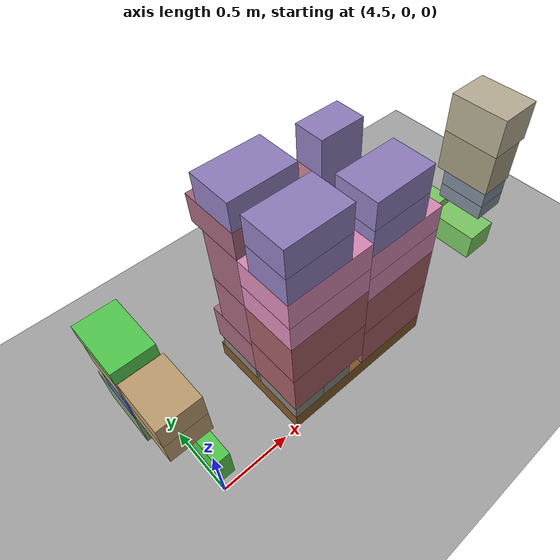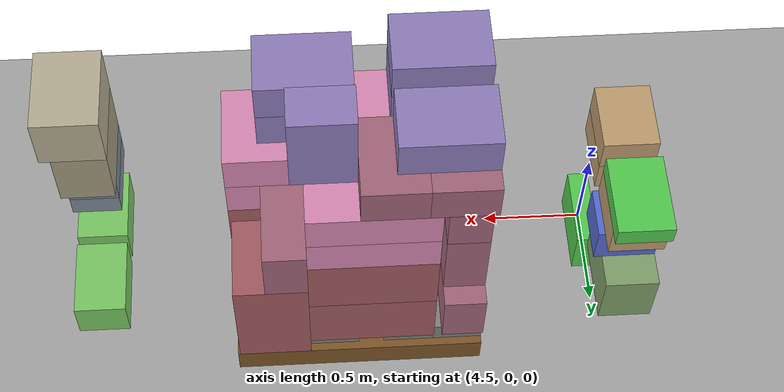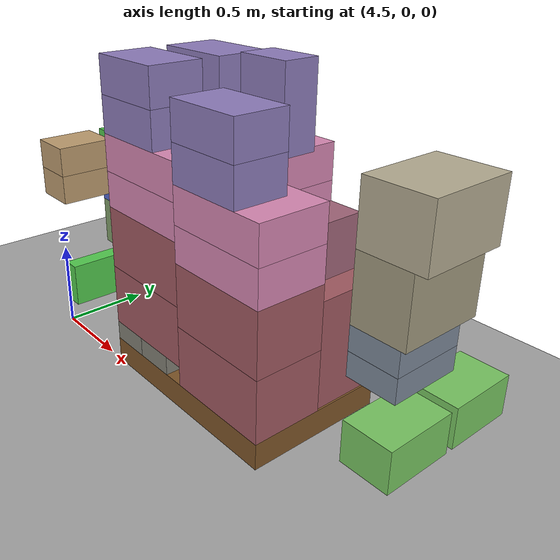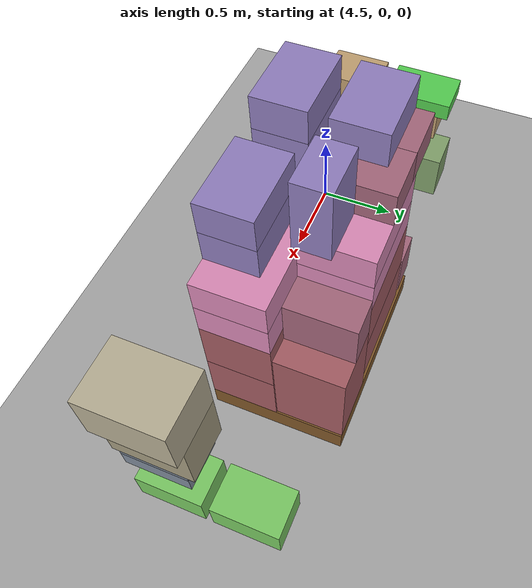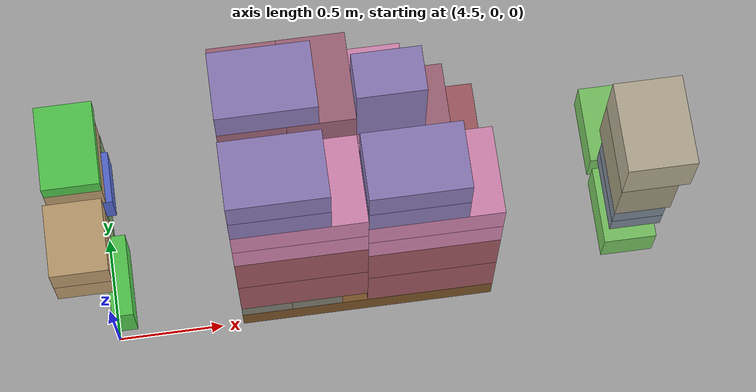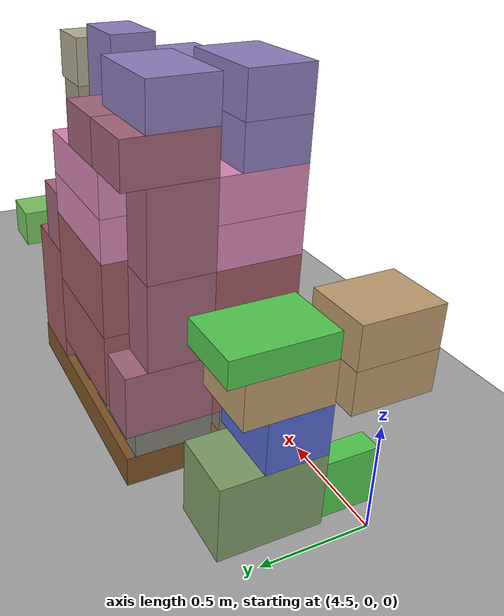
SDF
<sdf version="1.10">
 <world name="pallet_towers">
  <model name="ground_plane">
   <static>true</static>
   <link name="link">
    <collision name="collision">
     <geometry><plane><normal>0 0 1</normal><size>30 30</size></plane></geometry>
     <surface>
      <friction><ode><mu>0.35</mu><mu2>0.35</mu2></ode></friction>
      <bounce><restitution_coefficient>0</restitution_coefficient><threshold>100000</threshold></bounce>
      <contact><ode><kp>1000000</kp><kd>100</kd><max_vel>1</max_vel><min_depth>0.0005</min_depth></ode></contact>
     </surface>
    </collision>
    <visual name="visual">
     <geometry><plane><normal>0 0 1</normal><size>30 30</size></plane></geometry>
     <material><ambient>0.65 0.65 0.65 1</ambient><diffuse>0.65 0.65 0.65 1</diffuse></material>
    </visual>
   </link>
  </model>
  <model name="box_p03_0009_COFFEE_004_COFFEE">
   <static>false</static>
   <pose>4.425 0.6 0.524 0 0 0</pose>
   <link name="body">
    <inertial>
     <mass>13</mass>
     <inertia>
      <ixx>0.270833333</ixx>
      <ixy>0</ixy>
      <ixz>0</ixz>
      <iyy>0.165208333</iyy>
      <iyz>0</iyz>
      <izz>0.241041667</izz>
     </inertia>
    </inertial>
    <collision name="collision">
     <geometry><box><size>0.25 0.4 0.3</size></box></geometry>
     <surface>
      <friction><ode><mu>0.35</mu><mu2>0.35</mu2></ode></friction>
      <bounce><restitution_coefficient>0</restitution_coefficient><threshold>100000</threshold></bounce>
      <contact><ode><kp>1000000</kp><kd>100</kd><max_vel>1</max_vel><min_depth>0.0005</min_depth></ode></contact>
     </surface>
    </collision>
    <visual name="visual">
     <geometry><box><size>0.25 0.4 0.3</size></box></geometry>
     <material>
      <ambient>0.505882353 0.631372549 0.419607843 1</ambient>
      <diffuse>0.505882353 0.631372549 0.419607843 1</diffuse>
      <specular>0.05 0.05 0.05 1</specular>
     </material>
    </visual>
   </link>
  </model>
  <model name="box_p03_0018_CHOCO_006_CHOCO">
   <static>false</static>
   <pose>4.445 0.52 0.774 0 0 0</pose>
   <link name="body">
    <inertial>
     <mass>6</mass>
     <inertia><ixx>0.0488</ixx><ixy>0</ixy><ixz>0</ixz><iyy>0.06205</iyy><iyz>0</iyz><izz>0.07085</izz></inertia>
    </inertial>
    <collision name="collision">
     <geometry><box><size>0.29 0.24 0.2</size></box></geometry>
     <surface>
      <friction><ode><mu>0.35</mu><mu2>0.35</mu2></ode></friction>
      <bounce><restitution_coefficient>0</restitution_coefficient><threshold>100000</threshold></bounce>
      <contact><ode><kp>1000000</kp><kd>100</kd><max_vel>1</max_vel><min_depth>0.0005</min_depth></ode></contact>
     </surface>
    </collision>
    <visual name="visual">
     <geometry><box><size>0.29 0.24 0.2</size></box></geometry>
     <material>
      <ambient>0.337254902 0.419607843 0.835294118 1</ambient>
      <diffuse>0.337254902 0.419607843 0.835294118 1</diffuse>
      <specular>0.05 0.05 0.05 1</specular>
     </material>
    </visual>
   </link>
  </model>
  <model name="box_p03_0027_HONEY_001_HONEY">
   <static>false</static>
   <pose>4.43 0.165 0.889 0 0 0</pose>
   <link name="body">
    <inertial>
     <mass>8</mass>
     <inertia>
      <ixx>0.0918666667</ixx>
      <ixy>0</ixy>
      <ixz>0</ixz>
      <iyy>0.0643333333</iyy>
      <iyz>0</iyz>
      <izz>0.117666667</izz>
     </inertia>
    </inertial>
    <collision name="collision">
     <geometry><box><size>0.26 0.33 0.17</size></box></geometry>
     <surface>
      <friction><ode><mu>0.35</mu><mu2>0.35</mu2></ode></friction>
      <bounce><restitution_coefficient>0</restitution_coefficient><threshold>100000</threshold></bounce>
      <contact><ode><kp>1000000</kp><kd>100</kd><max_vel>1</max_vel><min_depth>0.0005</min_depth></ode></contact>
     </surface>
    </collision>
    <visual name="visual">
     <geometry><box><size>0.26 0.33 0.17</size></box></geometry>
     <material>
      <ambient>0.752941176 0.623529412 0.443137255 1</ambient>
      <diffuse>0.752941176 0.623529412 0.443137255 1</diffuse>
      <specular>0.05 0.05 0.05 1</specular>
     </material>
    </visual>
   </link>
  </model>
  <model name="box_p03_0029_HONEY_003_HONEY">
   <static>false</static>
   <pose>4.43 0.565 0.959 0 0 0</pose>
   <link name="body">
    <inertial>
     <mass>8</mass>
     <inertia>
      <ixx>0.0918666667</ixx>
      <ixy>0</ixy>
      <ixz>0</ixz>
      <iyy>0.0643333333</iyy>
      <iyz>0</iyz>
      <izz>0.117666667</izz>
     </inertia>
    </inertial>
    <collision name="collision">
     <geometry><box><size>0.26 0.33 0.17</size></box></geometry>
     <surface>
      <friction><ode><mu>0.35</mu><mu2>0.35</mu2></ode></friction>
      <bounce><restitution_coefficient>0</restitution_coefficient><threshold>100000</threshold></bounce>
      <contact><ode><kp>1000000</kp><kd>100</kd><max_vel>1</max_vel><min_depth>0.0005</min_depth></ode></contact>
     </surface>
    </collision>
    <visual name="visual">
     <geometry><box><size>0.26 0.33 0.17</size></box></geometry>
     <material>
      <ambient>0.752941176 0.623529412 0.443137255 1</ambient>
      <diffuse>0.752941176 0.623529412 0.443137255 1</diffuse>
      <specular>0.05 0.05 0.05 1</specular>
     </material>
    </visual>
   </link>
  </model>
  <model name="box_p03_0030_HONEY_004_HONEY">
   <static>false</static>
   <pose>4.43 0.165 1.059 0 0 0</pose>
   <link name="body">
    <inertial>
     <mass>8</mass>
     <inertia>
      <ixx>0.0918666667</ixx>
      <ixy>0</ixy>
      <ixz>0</ixz>
      <iyy>0.0643333333</iyy>
      <iyz>0</iyz>
      <izz>0.117666667</izz>
     </inertia>
    </inertial>
    <collision name="collision">
     <geometry><box><size>0.26 0.33 0.17</size></box></geometry>
     <surface>
      <friction><ode><mu>0.35</mu><mu2>0.35</mu2></ode></friction>
      <bounce><restitution_coefficient>0</restitution_coefficient><threshold>100000</threshold></bounce>
      <contact><ode><kp>1000000</kp><kd>100</kd><max_vel>1</max_vel><min_depth>0.0005</min_depth></ode></contact>
     </surface>
    </collision>
    <visual name="visual">
     <geometry><box><size>0.26 0.33 0.17</size></box></geometry>
     <material>
      <ambient>0.752941176 0.623529412 0.443137255 1</ambient>
      <diffuse>0.752941176 0.623529412 0.443137255 1</diffuse>
      <specular>0.05 0.05 0.05 1</specular>
     </material>
    </visual>
   </link>
  </model>
  <model name="box_p03_0034_YOGURT_001_YOGURT">
   <static>false</static>
   <pose>4.55 0.195 0.274 0 0 0</pose>
   <link name="body">
    <inertial>
     <mass>5</mass>
     <inertia>
      <ixx>0.0915416667</ixx>
      <ixy>0</ixy>
      <ixz>0</ixz>
      <iyy>0.0323333333</iyy>
      <iyz>0</iyz>
      <izz>0.0675416667</izz>
     </inertia>
    </inertial>
    <collision name="collision">
     <geometry><box><size>0.1 0.39 0.26</size></box></geometry>
     <surface>
      <friction><ode><mu>0.35</mu><mu2>0.35</mu2></ode></friction>
      <bounce><restitution_coefficient>0</restitution_coefficient><threshold>100000</threshold></bounce>
      <contact><ode><kp>1000000</kp><kd>100</kd><max_vel>1</max_vel><min_depth>0.0005</min_depth></ode></contact>
     </surface>
    </collision>
    <visual name="visual">
     <geometry><box><size>0.1 0.39 0.26</size></box></geometry>
     <material>
      <ambient>0.329411765 0.803921569 0.31372549 1</ambient>
      <diffuse>0.329411765 0.803921569 0.31372549 1</diffuse>
      <specular>0.05 0.05 0.05 1</specular>
     </material>
    </visual>
   </link>
  </model>
  <model name="box_p03_0036_YOGURT_003_YOGURT">
   <static>false</static>
   <pose>4.43 0.595 1.094 0 0 0</pose>
   <link name="body">
    <inertial>
     <mass>5</mass>
     <inertia>
      <ixx>0.0675416667</ixx>
      <ixy>0</ixy>
      <ixz>0</ixz>
      <iyy>0.0323333333</iyy>
      <iyz>0</iyz>
      <izz>0.0915416667</izz>
     </inertia>
    </inertial>
    <collision name="collision">
     <geometry><box><size>0.26 0.39 0.1</size></box></geometry>
     <surface>
      <friction><ode><mu>0.35</mu><mu2>0.35</mu2></ode></friction>
      <bounce><restitution_coefficient>0</restitution_coefficient><threshold>100000</threshold></bounce>
      <contact><ode><kp>1000000</kp><kd>100</kd><max_vel>1</max_vel><min_depth>0.0005</min_depth></ode></contact>
     </surface>
    </collision>
    <visual name="visual">
     <geometry><box><size>0.26 0.39 0.1</size></box></geometry>
     <material>
      <ambient>0.329411765 0.803921569 0.31372549 1</ambient>
      <diffuse>0.329411765 0.803921569 0.31372549 1</diffuse>
      <specular>0.05 0.05 0.05 1</specular>
     </material>
    </visual>
   </link>
  </model>
  <model name="pallet_04_4">
   <static>false</static>
   <pose>5.7 0.4 0.072 0 0 0</pose>
   <link name="body">
    <inertial>
     <mass>25</mass>
     <inertia>
      <ixx>1.37653333</ixx>
      <ixy>0</ixy>
      <ixz>0</ixz>
      <iyy>3.0432</iyy>
      <iyz>0</iyz>
      <izz>4.33333333</izz>
     </inertia>
    </inertial>
    <collision name="collision">
     <geometry><box><size>1.2 0.8 0.144</size></box></geometry>
     <surface>
      <friction><ode><mu>0.35</mu><mu2>0.35</mu2></ode></friction>
      <bounce><restitution_coefficient>0</restitution_coefficient><threshold>100000</threshold></bounce>
      <contact><ode><kp>1000000</kp><kd>100</kd><max_vel>1</max_vel><min_depth>0.0005</min_depth></ode></contact>
     </surface>
    </collision>
    <visual name="visual">
     <geometry><box><size>1.2 0.8 0.144</size></box></geometry>
     <material>
      <ambient>0.5 0.34 0.16 1</ambient>
      <diffuse>0.5 0.34 0.16 1</diffuse>
      <specular>0.05 0.05 0.05 1</specular>
     </material>
    </visual>
   </link>
  </model>
  <model name="box_p04_0001_BUTTER_003_BUTTER">
   <static>false</static>
   <pose>5.82 0.58 0.199 0 0 0</pose>
   <link name="body">
    <inertial>
     <mass>10</mass>
     <inertia>
      <ixx>0.118083333</ixx>
      <ixy>0</ixy>
      <ixz>0</ixz>
      <iyy>0.0580833333</iyy>
      <iyz>0</iyz>
      <izz>0.156</izz>
     </inertia>
    </inertial>
    <collision name="collision">
     <geometry><box><size>0.24 0.36 0.11</size></box></geometry>
     <surface>
      <friction><ode><mu>0.35</mu><mu2>0.35</mu2></ode></friction>
      <bounce><restitution_coefficient>0</restitution_coefficient><threshold>100000</threshold></bounce>
      <contact><ode><kp>1000000</kp><kd>100</kd><max_vel>1</max_vel><min_depth>0.0005</min_depth></ode></contact>
     </surface>
    </collision>
    <visual name="visual">
     <geometry><box><size>0.24 0.36 0.11</size></box></geometry>
     <material>
      <ambient>0.51372549 0.509803922 0.466666667 1</ambient>
      <diffuse>0.51372549 0.509803922 0.466666667 1</diffuse>
      <specular>0.05 0.05 0.05 1</specular>
     </material>
    </visual>
   </link>
  </model>
  <model name="box_p04_0002_BUTTER_004_BUTTER">
   <static>false</static>
   <pose>5.22 0.58 0.199 0 0 0</pose>
   <link name="body">
    <inertial>
     <mass>10</mass>
     <inertia>
      <ixx>0.118083333</ixx>
      <ixy>0</ixy>
      <ixz>0</ixz>
      <iyy>0.0580833333</iyy>
      <iyz>0</iyz>
      <izz>0.156</izz>
     </inertia>
    </inertial>
    <collision name="collision">
     <geometry><box><size>0.24 0.36 0.11</size></box></geometry>
     <surface>
      <friction><ode><mu>0.35</mu><mu2>0.35</mu2></ode></friction>
      <bounce><restitution_coefficient>0</restitution_coefficient><threshold>100000</threshold></bounce>
      <contact><ode><kp>1000000</kp><kd>100</kd><max_vel>1</max_vel><min_depth>0.0005</min_depth></ode></contact>
     </surface>
    </collision>
    <visual name="visual">
     <geometry><box><size>0.24 0.36 0.11</size></box></geometry>
     <material>
      <ambient>0.51372549 0.509803922 0.466666667 1</ambient>
      <diffuse>0.51372549 0.509803922 0.466666667 1</diffuse>
      <specular>0.05 0.05 0.05 1</specular>
     </material>
    </visual>
   </link>
  </model>
  <model name="box_p04_0003_BUTTER_005_BUTTER">
   <static>false</static>
   <pose>5.46 0.58 0.199 0 0 0</pose>
   <link name="body">
    <inertial>
     <mass>10</mass>
     <inertia>
      <ixx>0.118083333</ixx>
      <ixy>0</ixy>
      <ixz>0</ixz>
      <iyy>0.0580833333</iyy>
      <iyz>0</iyz>
      <izz>0.156</izz>
     </inertia>
    </inertial>
    <collision name="collision">
     <geometry><box><size>0.24 0.36 0.11</size></box></geometry>
     <surface>
      <friction><ode><mu>0.35</mu><mu2>0.35</mu2></ode></friction>
      <bounce><restitution_coefficient>0</restitution_coefficient><threshold>100000</threshold></bounce>
      <contact><ode><kp>1000000</kp><kd>100</kd><max_vel>1</max_vel><min_depth>0.0005</min_depth></ode></contact>
     </surface>
    </collision>
    <visual name="visual">
     <geometry><box><size>0.24 0.36 0.11</size></box></geometry>
     <material>
      <ambient>0.51372549 0.509803922 0.466666667 1</ambient>
      <diffuse>0.51372549 0.509803922 0.466666667 1</diffuse>
      <specular>0.05 0.05 0.05 1</specular>
     </material>
    </visual>
   </link>
  </model>
  <model name="box_p04_0004_BUTTER_006_BUTTER">
   <static>false</static>
   <pose>5.22 0.18 0.199 0 0 0</pose>
   <link name="body">
    <inertial>
     <mass>10</mass>
     <inertia>
      <ixx>0.118083333</ixx>
      <ixy>0</ixy>
      <ixz>0</ixz>
      <iyy>0.0580833333</iyy>
      <iyz>0</iyz>
      <izz>0.156</izz>
     </inertia>
    </inertial>
    <collision name="collision">
     <geometry><box><size>0.24 0.36 0.11</size></box></geometry>
     <surface>
      <friction><ode><mu>0.35</mu><mu2>0.35</mu2></ode></friction>
      <bounce><restitution_coefficient>0</restitution_coefficient><threshold>100000</threshold></bounce>
      <contact><ode><kp>1000000</kp><kd>100</kd><max_vel>1</max_vel><min_depth>0.0005</min_depth></ode></contact>
     </surface>
    </collision>
    <visual name="visual">
     <geometry><box><size>0.24 0.36 0.11</size></box></geometry>
     <material>
      <ambient>0.51372549 0.509803922 0.466666667 1</ambient>
      <diffuse>0.51372549 0.509803922 0.466666667 1</diffuse>
      <specular>0.05 0.05 0.05 1</specular>
     </material>
    </visual>
   </link>
  </model>
  <model name="box_p04_0005_BUTTER_007_BUTTER">
   <static>false</static>
   <pose>5.46 0.18 0.199 0 0 0</pose>
   <link name="body">
    <inertial>
     <mass>10</mass>
     <inertia>
      <ixx>0.118083333</ixx>
      <ixy>0</ixy>
      <ixz>0</ixz>
      <iyy>0.0580833333</iyy>
      <iyz>0</iyz>
      <izz>0.156</izz>
     </inertia>
    </inertial>
    <collision name="collision">
     <geometry><box><size>0.24 0.36 0.11</size></box></geometry>
     <surface>
      <friction><ode><mu>0.35</mu><mu2>0.35</mu2></ode></friction>
      <bounce><restitution_coefficient>0</restitution_coefficient><threshold>100000</threshold></bounce>
      <contact><ode><kp>1000000</kp><kd>100</kd><max_vel>1</max_vel><min_depth>0.0005</min_depth></ode></contact>
     </surface>
    </collision>
    <visual name="visual">
     <geometry><box><size>0.24 0.36 0.11</size></box></geometry>
     <material>
      <ambient>0.51372549 0.509803922 0.466666667 1</ambient>
      <diffuse>0.51372549 0.509803922 0.466666667 1</diffuse>
      <specular>0.05 0.05 0.05 1</specular>
     </material>
    </visual>
   </link>
  </model>
  <model name="box_p04_0006_CHIPS_001_CHIPS">
   <static>false</static>
   <pose>6 0.2 0.319 0 0 0</pose>
   <link name="body">
    <inertial>
     <mass>3.5</mass>
     <inertia>
      <ixx>0.0823958333</ixx>
      <ixy>0</ixy>
      <ixz>0</ixz>
      <iyy>0.140729167</iyy>
      <iyz>0</iyz>
      <izz>0.151666667</izz>
     </inertia>
    </inertial>
    <collision name="collision">
     <geometry><box><size>0.6 0.4 0.35</size></box></geometry>
     <surface>
      <friction><ode><mu>0.35</mu><mu2>0.35</mu2></ode></friction>
      <bounce><restitution_coefficient>0</restitution_coefficient><threshold>100000</threshold></bounce>
      <contact><ode><kp>1000000</kp><kd>100</kd><max_vel>1</max_vel><min_depth>0.0005</min_depth></ode></contact>
     </surface>
    </collision>
    <visual name="visual">
     <geometry><box><size>0.6 0.4 0.35</size></box></geometry>
     <material>
      <ambient>0.643137255 0.360784314 0.388235294 1</ambient>
      <diffuse>0.643137255 0.360784314 0.388235294 1</diffuse>
      <specular>0.05 0.05 0.05 1</specular>
     </material>
    </visual>
   </link>
  </model>
  <model name="box_p04_0007_CHIPS_002_CHIPS">
   <static>false</static>
   <pose>6.115 0.6 0.444 0 0 0</pose>
   <link name="body">
    <inertial>
     <mass>3.5</mass>
     <inertia>
      <ixx>0.151666667</ixx>
      <ixy>0</ixy>
      <ixz>0</ixz>
      <iyy>0.140729167</iyy>
      <iyz>0</iyz>
      <izz>0.0823958333</izz>
     </inertia>
    </inertial>
    <collision name="collision">
     <geometry><box><size>0.35 0.4 0.6</size></box></geometry>
     <surface>
      <friction><ode><mu>0.35</mu><mu2>0.35</mu2></ode></friction>
      <bounce><restitution_coefficient>0</restitution_coefficient><threshold>100000</threshold></bounce>
      <contact><ode><kp>1000000</kp><kd>100</kd><max_vel>1</max_vel><min_depth>0.0005</min_depth></ode></contact>
     </surface>
    </collision>
    <visual name="visual">
     <geometry><box><size>0.35 0.4 0.6</size></box></geometry>
     <material>
      <ambient>0.643137255 0.360784314 0.388235294 1</ambient>
      <diffuse>0.643137255 0.360784314 0.388235294 1</diffuse>
      <specular>0.05 0.05 0.05 1</specular>
     </material>
    </visual>
   </link>
  </model>
  <model name="box_p04_0008_CHIPS_003_CHIPS">
   <static>false</static>
   <pose>5.64 0.6 0.429 0 0 0</pose>
   <link name="body">
    <inertial>
     <mass>3.5</mass>
     <inertia>
      <ixx>0.0823958333</ixx>
      <ixy>0</ixy>
      <ixz>0</ixz>
      <iyy>0.140729167</iyy>
      <iyz>0</iyz>
      <izz>0.151666667</izz>
     </inertia>
    </inertial>
    <collision name="collision">
     <geometry><box><size>0.6 0.4 0.35</size></box></geometry>
     <surface>
      <friction><ode><mu>0.35</mu><mu2>0.35</mu2></ode></friction>
      <bounce><restitution_coefficient>0</restitution_coefficient><threshold>100000</threshold></bounce>
      <contact><ode><kp>1000000</kp><kd>100</kd><max_vel>1</max_vel><min_depth>0.0005</min_depth></ode></contact>
     </surface>
    </collision>
    <visual name="visual">
     <geometry><box><size>0.6 0.4 0.35</size></box></geometry>
     <material>
      <ambient>0.643137255 0.360784314 0.388235294 1</ambient>
      <diffuse>0.643137255 0.360784314 0.388235294 1</diffuse>
      <specular>0.05 0.05 0.05 1</specular>
     </material>
    </visual>
   </link>
  </model>
  <model name="box_p04_0009_CHIPS_004_CHIPS">
   <static>false</static>
   <pose>5.4 0.2 0.429 0 0 0</pose>
   <link name="body">
    <inertial>
     <mass>3.5</mass>
     <inertia>
      <ixx>0.0823958333</ixx>
      <ixy>0</ixy>
      <ixz>0</ixz>
      <iyy>0.140729167</iyy>
      <iyz>0</iyz>
      <izz>0.151666667</izz>
     </inertia>
    </inertial>
    <collision name="collision">
     <geometry><box><size>0.6 0.4 0.35</size></box></geometry>
     <surface>
      <friction><ode><mu>0.35</mu><mu2>0.35</mu2></ode></friction>
      <bounce><restitution_coefficient>0</restitution_coefficient><threshold>100000</threshold></bounce>
      <contact><ode><kp>1000000</kp><kd>100</kd><max_vel>1</max_vel><min_depth>0.0005</min_depth></ode></contact>
     </surface>
    </collision>
    <visual name="visual">
     <geometry><box><size>0.6 0.4 0.35</size></box></geometry>
     <material>
      <ambient>0.643137255 0.360784314 0.388235294 1</ambient>
      <diffuse>0.643137255 0.360784314 0.388235294 1</diffuse>
      <specular>0.05 0.05 0.05 1</specular>
     </material>
    </visual>
   </link>
  </model>
  <model name="box_p04_0010_CHIPS_005_CHIPS">
   <static>false</static>
   <pose>6 0.2 0.669 0 0 0</pose>
   <link name="body">
    <inertial>
     <mass>3.5</mass>
     <inertia>
      <ixx>0.0823958333</ixx>
      <ixy>0</ixy>
      <ixz>0</ixz>
      <iyy>0.140729167</iyy>
      <iyz>0</iyz>
      <izz>0.151666667</izz>
     </inertia>
    </inertial>
    <collision name="collision">
     <geometry><box><size>0.6 0.4 0.35</size></box></geometry>
     <surface>
      <friction><ode><mu>0.35</mu><mu2>0.35</mu2></ode></friction>
      <bounce><restitution_coefficient>0</restitution_coefficient><threshold>100000</threshold></bounce>
      <contact><ode><kp>1000000</kp><kd>100</kd><max_vel>1</max_vel><min_depth>0.0005</min_depth></ode></contact>
     </surface>
    </collision>
    <visual name="visual">
     <geometry><box><size>0.6 0.4 0.35</size></box></geometry>
     <material>
      <ambient>0.643137255 0.360784314 0.388235294 1</ambient>
      <diffuse>0.643137255 0.360784314 0.388235294 1</diffuse>
      <specular>0.05 0.05 0.05 1</specular>
     </material>
    </visual>
   </link>
  </model>
  <model name="box_p04_0011_CHIPS_006_CHIPS">
   <static>false</static>
   <pose>5.64 0.6 0.779 0 0 0</pose>
   <link name="body">
    <inertial>
     <mass>3.5</mass>
     <inertia>
      <ixx>0.0823958333</ixx>
      <ixy>0</ixy>
      <ixz>0</ixz>
      <iyy>0.140729167</iyy>
      <iyz>0</iyz>
      <izz>0.151666667</izz>
     </inertia>
    </inertial>
    <collision name="collision">
     <geometry><box><size>0.6 0.4 0.35</size></box></geometry>
     <surface>
      <friction><ode><mu>0.35</mu><mu2>0.35</mu2></ode></friction>
      <bounce><restitution_coefficient>0</restitution_coefficient><threshold>100000</threshold></bounce>
      <contact><ode><kp>1000000</kp><kd>100</kd><max_vel>1</max_vel><min_depth>0.0005</min_depth></ode></contact>
     </surface>
    </collision>
    <visual name="visual">
     <geometry><box><size>0.6 0.4 0.35</size></box></geometry>
     <material>
      <ambient>0.643137255 0.360784314 0.388235294 1</ambient>
      <diffuse>0.643137255 0.360784314 0.388235294 1</diffuse>
      <specular>0.05 0.05 0.05 1</specular>
     </material>
    </visual>
   </link>
  </model>
  <model name="box_p04_0012_CHIPS_007_CHIPS">
   <static>false</static>
   <pose>5.4 0.2 0.779 0 0 0</pose>
   <link name="body">
    <inertial>
     <mass>3.5</mass>
     <inertia>
      <ixx>0.0823958333</ixx>
      <ixy>0</ixy>
      <ixz>0</ixz>
      <iyy>0.140729167</iyy>
      <iyz>0</iyz>
      <izz>0.151666667</izz>
     </inertia>
    </inertial>
    <collision name="collision">
     <geometry><box><size>0.6 0.4 0.35</size></box></geometry>
     <surface>
      <friction><ode><mu>0.35</mu><mu2>0.35</mu2></ode></friction>
      <bounce><restitution_coefficient>0</restitution_coefficient><threshold>100000</threshold></bounce>
      <contact><ode><kp>1000000</kp><kd>100</kd><max_vel>1</max_vel><min_depth>0.0005</min_depth></ode></contact>
     </surface>
    </collision>
    <visual name="visual">
     <geometry><box><size>0.6 0.4 0.35</size></box></geometry>
     <material>
      <ambient>0.643137255 0.360784314 0.388235294 1</ambient>
      <diffuse>0.643137255 0.360784314 0.388235294 1</diffuse>
      <specular>0.05 0.05 0.05 1</specular>
     </material>
    </visual>
   </link>
  </model>
  <model name="box_p04_0013_POTATO_001_POTATO">
   <static>false</static>
   <pose>6 0.2 0.944 0 0 0</pose>
   <link name="body">
    <inertial>
     <mass>25</mass>
     <inertia>
      <ixx>0.416666667</ixx>
      <ixy>0</ixy>
      <ixz>0</ixz>
      <iyy>0.833333333</iyy>
      <iyz>0</iyz>
      <izz>1.08333333</izz>
     </inertia>
    </inertial>
    <collision name="collision">
     <geometry><box><size>0.6 0.4 0.2</size></box></geometry>
     <surface>
      <friction><ode><mu>0.35</mu><mu2>0.35</mu2></ode></friction>
      <bounce><restitution_coefficient>0</restitution_coefficient><threshold>100000</threshold></bounce>
      <contact><ode><kp>1000000</kp><kd>100</kd><max_vel>1</max_vel><min_depth>0.0005</min_depth></ode></contact>
     </surface>
    </collision>
    <visual name="visual">
     <geometry><box><size>0.6 0.4 0.2</size></box></geometry>
     <material>
      <ambient>0.854901961 0.541176471 0.71372549 1</ambient>
      <diffuse>0.854901961 0.541176471 0.71372549 1</diffuse>
      <specular>0.05 0.05 0.05 1</specular>
     </material>
    </visual>
   </link>
  </model>
  <model name="box_p04_0014_POTATO_002_POTATO">
   <static>false</static>
   <pose>5.4 0.2 1.054 0 0 0</pose>
   <link name="body">
    <inertial>
     <mass>25</mass>
     <inertia>
      <ixx>0.416666667</ixx>
      <ixy>0</ixy>
      <ixz>0</ixz>
      <iyy>0.833333333</iyy>
      <iyz>0</iyz>
      <izz>1.08333333</izz>
     </inertia>
    </inertial>
    <collision name="collision">
     <geometry><box><size>0.6 0.4 0.2</size></box></geometry>
     <surface>
      <friction><ode><mu>0.35</mu><mu2>0.35</mu2></ode></friction>
      <bounce><restitution_coefficient>0</restitution_coefficient><threshold>100000</threshold></bounce>
      <contact><ode><kp>1000000</kp><kd>100</kd><max_vel>1</max_vel><min_depth>0.0005</min_depth></ode></contact>
     </surface>
    </collision>
    <visual name="visual">
     <geometry><box><size>0.6 0.4 0.2</size></box></geometry>
     <material>
      <ambient>0.854901961 0.541176471 0.71372549 1</ambient>
      <diffuse>0.854901961 0.541176471 0.71372549 1</diffuse>
      <specular>0.05 0.05 0.05 1</specular>
     </material>
    </visual>
   </link>
  </model>
  <model name="box_p04_0015_POTATO_003_POTATO">
   <static>false</static>
   <pose>5.64 0.6 1.054 0 0 0</pose>
   <link name="body">
    <inertial>
     <mass>25</mass>
     <inertia>
      <ixx>0.416666667</ixx>
      <ixy>0</ixy>
      <ixz>0</ixz>
      <iyy>0.833333333</iyy>
      <iyz>0</iyz>
      <izz>1.08333333</izz>
     </inertia>
    </inertial>
    <collision name="collision">
     <geometry><box><size>0.6 0.4 0.2</size></box></geometry>
     <surface>
      <friction><ode><mu>0.35</mu><mu2>0.35</mu2></ode></friction>
      <bounce><restitution_coefficient>0</restitution_coefficient><threshold>100000</threshold></bounce>
      <contact><ode><kp>1000000</kp><kd>100</kd><max_vel>1</max_vel><min_depth>0.0005</min_depth></ode></contact>
     </surface>
    </collision>
    <visual name="visual">
     <geometry><box><size>0.6 0.4 0.2</size></box></geometry>
     <material>
      <ambient>0.854901961 0.541176471 0.71372549 1</ambient>
      <diffuse>0.854901961 0.541176471 0.71372549 1</diffuse>
      <specular>0.05 0.05 0.05 1</specular>
     </material>
    </visual>
   </link>
  </model>
  <model name="box_p04_0016_POTATO_004_POTATO">
   <static>false</static>
   <pose>6 0.2 1.144 0 0 0</pose>
   <link name="body">
    <inertial>
     <mass>25</mass>
     <inertia>
      <ixx>0.416666667</ixx>
      <ixy>0</ixy>
      <ixz>0</ixz>
      <iyy>0.833333333</iyy>
      <iyz>0</iyz>
      <izz>1.08333333</izz>
     </inertia>
    </inertial>
    <collision name="collision">
     <geometry><box><size>0.6 0.4 0.2</size></box></geometry>
     <surface>
      <friction><ode><mu>0.35</mu><mu2>0.35</mu2></ode></friction>
      <bounce><restitution_coefficient>0</restitution_coefficient><threshold>100000</threshold></bounce>
      <contact><ode><kp>1000000</kp><kd>100</kd><max_vel>1</max_vel><min_depth>0.0005</min_depth></ode></contact>
     </surface>
    </collision>
    <visual name="visual">
     <geometry><box><size>0.6 0.4 0.2</size></box></geometry>
     <material>
      <ambient>0.854901961 0.541176471 0.71372549 1</ambient>
      <diffuse>0.854901961 0.541176471 0.71372549 1</diffuse>
      <specular>0.05 0.05 0.05 1</specular>
     </material>
    </visual>
   </link>
  </model>
  <model name="box_p04_0017_POTATO_005_POTATO">
   <static>false</static>
   <pose>5.4 0.2 1.254 0 0 0</pose>
   <link name="body">
    <inertial>
     <mass>25</mass>
     <inertia>
      <ixx>0.416666667</ixx>
      <ixy>0</ixy>
      <ixz>0</ixz>
      <iyy>0.833333333</iyy>
      <iyz>0</iyz>
      <izz>1.08333333</izz>
     </inertia>
    </inertial>
    <collision name="collision">
     <geometry><box><size>0.6 0.4 0.2</size></box></geometry>
     <surface>
      <friction><ode><mu>0.35</mu><mu2>0.35</mu2></ode></friction>
      <bounce><restitution_coefficient>0</restitution_coefficient><threshold>100000</threshold></bounce>
      <contact><ode><kp>1000000</kp><kd>100</kd><max_vel>1</max_vel><min_depth>0.0005</min_depth></ode></contact>
     </surface>
    </collision>
    <visual name="visual">
     <geometry><box><size>0.6 0.4 0.2</size></box></geometry>
     <material>
      <ambient>0.854901961 0.541176471 0.71372549 1</ambient>
      <diffuse>0.854901961 0.541176471 0.71372549 1</diffuse>
      <specular>0.05 0.05 0.05 1</specular>
     </material>
    </visual>
   </link>
  </model>
  <model name="box_p04_0018_POTATO_006_POTATO">
   <static>false</static>
   <pose>5.64 0.6 1.254 0 0 0</pose>
   <link name="body">
    <inertial>
     <mass>25</mass>
     <inertia>
      <ixx>0.416666667</ixx>
      <ixy>0</ixy>
      <ixz>0</ixz>
      <iyy>0.833333333</iyy>
      <iyz>0</iyz>
      <izz>1.08333333</izz>
     </inertia>
    </inertial>
    <collision name="collision">
     <geometry><box><size>0.6 0.4 0.2</size></box></geometry>
     <surface>
      <friction><ode><mu>0.35</mu><mu2>0.35</mu2></ode></friction>
      <bounce><restitution_coefficient>0</restitution_coefficient><threshold>100000</threshold></bounce>
      <contact><ode><kp>1000000</kp><kd>100</kd><max_vel>1</max_vel><min_depth>0.0005</min_depth></ode></contact>
     </surface>
    </collision>
    <visual name="visual">
     <geometry><box><size>0.6 0.4 0.2</size></box></geometry>
     <material>
      <ambient>0.854901961 0.541176471 0.71372549 1</ambient>
      <diffuse>0.854901961 0.541176471 0.71372549 1</diffuse>
      <specular>0.05 0.05 0.05 1</specular>
     </material>
    </visual>
   </link>
  </model>
  <model name="box_p04_0019_ICECRM_001_ICECRM">
   <static>false</static>
   <pose>6.04 0.6 0.894 0 0 0</pose>
   <link name="body">
    <inertial>
     <mass>8</mass>
     <inertia>
      <ixx>0.166666667</ixx>
      <ixy>0</ixy>
      <ixz>0</ixz>
      <iyy>0.0866666667</iyy>
      <iyz>0</iyz>
      <izz>0.133333333</izz>
     </inertia>
    </inertial>
    <collision name="collision">
     <geometry><box><size>0.2 0.4 0.3</size></box></geometry>
     <surface>
      <friction><ode><mu>0.35</mu><mu2>0.35</mu2></ode></friction>
      <bounce><restitution_coefficient>0</restitution_coefficient><threshold>100000</threshold></bounce>
      <contact><ode><kp>1000000</kp><kd>100</kd><max_vel>1</max_vel><min_depth>0.0005</min_depth></ode></contact>
     </surface>
    </collision>
    <visual name="visual">
     <geometry><box><size>0.2 0.4 0.3</size></box></geometry>
     <material>
      <ambient>0.643137255 0.403921569 0.482352941 1</ambient>
      <diffuse>0.643137255 0.403921569 0.482352941 1</diffuse>
      <specular>0.05 0.05 0.05 1</specular>
     </material>
    </visual>
   </link>
  </model>
  <model name="box_p04_0020_ICECRM_002_ICECRM">
   <static>false</static>
   <pose>5.2 0.6 0.404 0 0 0</pose>
   <link name="body">
    <inertial>
     <mass>8</mass>
     <inertia>
      <ixx>0.166666667</ixx>
      <ixy>0</ixy>
      <ixz>0</ixz>
      <iyy>0.0866666667</iyy>
      <iyz>0</iyz>
      <izz>0.133333333</izz>
     </inertia>
    </inertial>
    <collision name="collision">
     <geometry><box><size>0.2 0.4 0.3</size></box></geometry>
     <surface>
      <friction><ode><mu>0.35</mu><mu2>0.35</mu2></ode></friction>
      <bounce><restitution_coefficient>0</restitution_coefficient><threshold>100000</threshold></bounce>
      <contact><ode><kp>1000000</kp><kd>100</kd><max_vel>1</max_vel><min_depth>0.0005</min_depth></ode></contact>
     </surface>
    </collision>
    <visual name="visual">
     <geometry><box><size>0.2 0.4 0.3</size></box></geometry>
     <material>
      <ambient>0.643137255 0.403921569 0.482352941 1</ambient>
      <diffuse>0.643137255 0.403921569 0.482352941 1</diffuse>
      <specular>0.05 0.05 0.05 1</specular>
     </material>
    </visual>
   </link>
  </model>
  <model name="box_p04_0021_ICECRM_003_ICECRM">
   <static>false</static>
   <pose>5.2 0.55 0.754 0 0 0</pose>
   <link name="body">
    <inertial>
     <mass>8</mass>
     <inertia>
      <ixx>0.166666667</ixx>
      <ixy>0</ixy>
      <ixz>0</ixz>
      <iyy>0.133333333</iyy>
      <iyz>0</iyz>
      <izz>0.0866666667</izz>
     </inertia>
    </inertial>
    <collision name="collision">
     <geometry><box><size>0.2 0.3 0.4</size></box></geometry>
     <surface>
      <friction><ode><mu>0.35</mu><mu2>0.35</mu2></ode></friction>
      <bounce><restitution_coefficient>0</restitution_coefficient><threshold>100000</threshold></bounce>
      <contact><ode><kp>1000000</kp><kd>100</kd><max_vel>1</max_vel><min_depth>0.0005</min_depth></ode></contact>
     </surface>
    </collision>
    <visual name="visual">
     <geometry><box><size>0.2 0.3 0.4</size></box></geometry>
     <material>
      <ambient>0.643137255 0.403921569 0.482352941 1</ambient>
      <diffuse>0.643137255 0.403921569 0.482352941 1</diffuse>
      <specular>0.05 0.05 0.05 1</specular>
     </material>
    </visual>
   </link>
  </model>
  <model name="box_p04_0022_ICECRM_004_ICECRM">
   <static>false</static>
   <pose>5.2 0.55 1.154 0 0 0</pose>
   <link name="body">
    <inertial>
     <mass>8</mass>
     <inertia>
      <ixx>0.166666667</ixx>
      <ixy>0</ixy>
      <ixz>0</ixz>
      <iyy>0.133333333</iyy>
      <iyz>0</iyz>
      <izz>0.0866666667</izz>
     </inertia>
    </inertial>
    <collision name="collision">
     <geometry><box><size>0.2 0.3 0.4</size></box></geometry>
     <surface>
      <friction><ode><mu>0.35</mu><mu2>0.35</mu2></ode></friction>
      <bounce><restitution_coefficient>0</restitution_coefficient><threshold>100000</threshold></bounce>
      <contact><ode><kp>1000000</kp><kd>100</kd><max_vel>1</max_vel><min_depth>0.0005</min_depth></ode></contact>
     </surface>
    </collision>
    <visual name="visual">
     <geometry><box><size>0.2 0.3 0.4</size></box></geometry>
     <material>
      <ambient>0.643137255 0.403921569 0.482352941 1</ambient>
      <diffuse>0.643137255 0.403921569 0.482352941 1</diffuse>
      <specular>0.05 0.05 0.05 1</specular>
     </material>
    </visual>
   </link>
  </model>
  <model name="box_p04_0023_ICECRM_005_ICECRM">
   <static>false</static>
   <pose>5.25 0.6 1.454 0 0 0</pose>
   <link name="body">
    <inertial>
     <mass>8</mass>
     <inertia>
      <ixx>0.133333333</ixx>
      <ixy>0</ixy>
      <ixz>0</ixz>
      <iyy>0.0866666667</iyy>
      <iyz>0</iyz>
      <izz>0.166666667</izz>
     </inertia>
    </inertial>
    <collision name="collision">
     <geometry><box><size>0.3 0.4 0.2</size></box></geometry>
     <surface>
      <friction><ode><mu>0.35</mu><mu2>0.35</mu2></ode></friction>
      <bounce><restitution_coefficient>0</restitution_coefficient><threshold>100000</threshold></bounce>
      <contact><ode><kp>1000000</kp><kd>100</kd><max_vel>1</max_vel><min_depth>0.0005</min_depth></ode></contact>
     </surface>
    </collision>
    <visual name="visual">
     <geometry><box><size>0.3 0.4 0.2</size></box></geometry>
     <material>
      <ambient>0.643137255 0.403921569 0.482352941 1</ambient>
      <diffuse>0.643137255 0.403921569 0.482352941 1</diffuse>
      <specular>0.05 0.05 0.05 1</specular>
     </material>
    </visual>
   </link>
  </model>
  <model name="box_p04_0024_ICECRM_006_ICECRM">
   <static>false</static>
   <pose>5.55 0.6 1.454 0 0 0</pose>
   <link name="body">
    <inertial>
     <mass>8</mass>
     <inertia>
      <ixx>0.133333333</ixx>
      <ixy>0</ixy>
      <ixz>0</ixz>
      <iyy>0.0866666667</iyy>
      <iyz>0</iyz>
      <izz>0.166666667</izz>
     </inertia>
    </inertial>
    <collision name="collision">
     <geometry><box><size>0.3 0.4 0.2</size></box></geometry>
     <surface>
      <friction><ode><mu>0.35</mu><mu2>0.35</mu2></ode></friction>
      <bounce><restitution_coefficient>0</restitution_coefficient><threshold>100000</threshold></bounce>
      <contact><ode><kp>1000000</kp><kd>100</kd><max_vel>1</max_vel><min_depth>0.0005</min_depth></ode></contact>
     </surface>
    </collision>
    <visual name="visual">
     <geometry><box><size>0.3 0.4 0.2</size></box></geometry>
     <material>
      <ambient>0.643137255 0.403921569 0.482352941 1</ambient>
      <diffuse>0.643137255 0.403921569 0.482352941 1</diffuse>
      <specular>0.05 0.05 0.05 1</specular>
     </material>
    </visual>
   </link>
  </model>
  <model name="box_p04_0025_RICE_001_RICE">
   <static>false</static>
   <pose>5.32 0.15 1.454 0 0 0</pose>
   <link name="body">
    <inertial>
     <mass>20</mass>
     <inertia>
      <ixx>0.216666667</ixx>
      <ixy>0</ixy>
      <ixz>0</ixz>
      <iyy>0.389333333</iyy>
      <iyz>0</iyz>
      <izz>0.472666667</izz>
     </inertia>
    </inertial>
    <collision name="collision">
     <geometry><box><size>0.44 0.3 0.2</size></box></geometry>
     <surface>
      <friction><ode><mu>0.35</mu><mu2>0.35</mu2></ode></friction>
      <bounce><restitution_coefficient>0</restitution_coefficient><threshold>100000</threshold></bounce>
      <contact><ode><kp>1000000</kp><kd>100</kd><max_vel>1</max_vel><min_depth>0.0005</min_depth></ode></contact>
     </surface>
    </collision>
    <visual name="visual">
     <geometry><box><size>0.44 0.3 0.2</size></box></geometry>
     <material>
      <ambient>0.564705882 0.494117647 0.741176471 1</ambient>
      <diffuse>0.564705882 0.494117647 0.741176471 1</diffuse>
      <specular>0.05 0.05 0.05 1</specular>
     </material>
    </visual>
   </link>
  </model>
  <model name="box_p04_0026_RICE_002_RICE">
   <static>false</static>
   <pose>5.92 0.15 1.344 0 0 0</pose>
   <link name="body">
    <inertial>
     <mass>20</mass>
     <inertia>
      <ixx>0.216666667</ixx>
      <ixy>0</ixy>
      <ixz>0</ixz>
      <iyy>0.389333333</iyy>
      <iyz>0</iyz>
      <izz>0.472666667</izz>
     </inertia>
    </inertial>
    <collision name="collision">
     <geometry><box><size>0.44 0.3 0.2</size></box></geometry>
     <surface>
      <friction><ode><mu>0.35</mu><mu2>0.35</mu2></ode></friction>
      <bounce><restitution_coefficient>0</restitution_coefficient><threshold>100000</threshold></bounce>
      <contact><ode><kp>1000000</kp><kd>100</kd><max_vel>1</max_vel><min_depth>0.0005</min_depth></ode></contact>
     </surface>
    </collision>
    <visual name="visual">
     <geometry><box><size>0.44 0.3 0.2</size></box></geometry>
     <material>
      <ambient>0.564705882 0.494117647 0.741176471 1</ambient>
      <diffuse>0.564705882 0.494117647 0.741176471 1</diffuse>
      <specular>0.05 0.05 0.05 1</specular>
     </material>
    </visual>
   </link>
  </model>
  <model name="box_p04_0027_RICE_003_RICE">
   <static>false</static>
   <pose>5.92 0.15 1.544 0 0 0</pose>
   <link name="body">
    <inertial>
     <mass>20</mass>
     <inertia>
      <ixx>0.216666667</ixx>
      <ixy>0</ixy>
      <ixz>0</ixz>
      <iyy>0.389333333</iyy>
      <iyz>0</iyz>
      <izz>0.472666667</izz>
     </inertia>
    </inertial>
    <collision name="collision">
     <geometry><box><size>0.44 0.3 0.2</size></box></geometry>
     <surface>
      <friction><ode><mu>0.35</mu><mu2>0.35</mu2></ode></friction>
      <bounce><restitution_coefficient>0</restitution_coefficient><threshold>100000</threshold></bounce>
      <contact><ode><kp>1000000</kp><kd>100</kd><max_vel>1</max_vel><min_depth>0.0005</min_depth></ode></contact>
     </surface>
    </collision>
    <visual name="visual">
     <geometry><box><size>0.44 0.3 0.2</size></box></geometry>
     <material>
      <ambient>0.564705882 0.494117647 0.741176471 1</ambient>
      <diffuse>0.564705882 0.494117647 0.741176471 1</diffuse>
      <specular>0.05 0.05 0.05 1</specular>
     </material>
    </visual>
   </link>
  </model>
  <model name="box_p04_0028_RICE_004_RICE">
   <static>false</static>
   <pose>5.32 0.55 1.654 0 0 0</pose>
   <link name="body">
    <inertial>
     <mass>20</mass>
     <inertia>
      <ixx>0.216666667</ixx>
      <ixy>0</ixy>
      <ixz>0</ixz>
      <iyy>0.389333333</iyy>
      <iyz>0</iyz>
      <izz>0.472666667</izz>
     </inertia>
    </inertial>
    <collision name="collision">
     <geometry><box><size>0.44 0.3 0.2</size></box></geometry>
     <surface>
      <friction><ode><mu>0.35</mu><mu2>0.35</mu2></ode></friction>
      <bounce><restitution_coefficient>0</restitution_coefficient><threshold>100000</threshold></bounce>
      <contact><ode><kp>1000000</kp><kd>100</kd><max_vel>1</max_vel><min_depth>0.0005</min_depth></ode></contact>
     </surface>
    </collision>
    <visual name="visual">
     <geometry><box><size>0.44 0.3 0.2</size></box></geometry>
     <material>
      <ambient>0.564705882 0.494117647 0.741176471 1</ambient>
      <diffuse>0.564705882 0.494117647 0.741176471 1</diffuse>
      <specular>0.05 0.05 0.05 1</specular>
     </material>
    </visual>
   </link>
  </model>
  <model name="box_p04_0029_RICE_005_RICE">
   <static>false</static>
   <pose>5.32 0.15 1.654 0 0 0</pose>
   <link name="body">
    <inertial>
     <mass>20</mass>
     <inertia>
      <ixx>0.216666667</ixx>
      <ixy>0</ixy>
      <ixz>0</ixz>
      <iyy>0.389333333</iyy>
      <iyz>0</iyz>
      <izz>0.472666667</izz>
     </inertia>
    </inertial>
    <collision name="collision">
     <geometry><box><size>0.44 0.3 0.2</size></box></geometry>
     <surface>
      <friction><ode><mu>0.35</mu><mu2>0.35</mu2></ode></friction>
      <bounce><restitution_coefficient>0</restitution_coefficient><threshold>100000</threshold></bounce>
      <contact><ode><kp>1000000</kp><kd>100</kd><max_vel>1</max_vel><min_depth>0.0005</min_depth></ode></contact>
     </surface>
    </collision>
    <visual name="visual">
     <geometry><box><size>0.44 0.3 0.2</size></box></geometry>
     <material>
      <ambient>0.564705882 0.494117647 0.741176471 1</ambient>
      <diffuse>0.564705882 0.494117647 0.741176471 1</diffuse>
      <specular>0.05 0.05 0.05 1</specular>
     </material>
    </visual>
   </link>
  </model>
  <model name="box_p04_0030_RICE_006_RICE">
   <static>false</static>
   <pose>5.85 0.5 1.574 0 0 0</pose>
   <link name="body">
    <inertial>
     <mass>20</mass>
     <inertia>
      <ixx>0.389333333</ixx>
      <ixy>0</ixy>
      <ixz>0</ixz>
      <iyy>0.472666667</iyy>
      <iyz>0</iyz>
      <izz>0.216666667</izz>
     </inertia>
    </inertial>
    <collision name="collision">
     <geometry><box><size>0.3 0.2 0.44</size></box></geometry>
     <surface>
      <friction><ode><mu>0.35</mu><mu2>0.35</mu2></ode></friction>
      <bounce><restitution_coefficient>0</restitution_coefficient><threshold>100000</threshold></bounce>
      <contact><ode><kp>1000000</kp><kd>100</kd><max_vel>1</max_vel><min_depth>0.0005</min_depth></ode></contact>
     </surface>
    </collision>
    <visual name="visual">
     <geometry><box><size>0.3 0.2 0.44</size></box></geometry>
     <material>
      <ambient>0.564705882 0.494117647 0.741176471 1</ambient>
      <diffuse>0.564705882 0.494117647 0.741176471 1</diffuse>
      <specular>0.05 0.05 0.05 1</specular>
     </material>
    </visual>
   </link>
  </model>
  <model name="box_p05_0007_TEA_001_TEA">
   <static>false</static>
   <pose>6.92 0.58 0.494 0 0 0</pose>
   <link name="body">
    <inertial>
     <mass>5</mass>
     <inertia>
      <ixx>0.0706666667</ixx>
      <ixy>0</ixy>
      <ixz>0</ixz>
      <iyy>0.0406666667</iyy>
      <iyz>0</iyz>
      <izz>0.078</izz>
     </inertia>
    </inertial>
    <collision name="collision">
     <geometry><box><size>0.24 0.36 0.2</size></box></geometry>
     <surface>
      <friction><ode><mu>0.35</mu><mu2>0.35</mu2></ode></friction>
      <bounce><restitution_coefficient>0</restitution_coefficient><threshold>100000</threshold></bounce>
      <contact><ode><kp>1000000</kp><kd>100</kd><max_vel>1</max_vel><min_depth>0.0005</min_depth></ode></contact>
     </surface>
    </collision>
    <visual name="visual">
     <geometry><box><size>0.24 0.36 0.2</size></box></geometry>
     <material>
      <ambient>0.478431373 0.788235294 0.388235294 1</ambient>
      <diffuse>0.478431373 0.788235294 0.388235294 1</diffuse>
      <specular>0.05 0.05 0.05 1</specular>
     </material>
    </visual>
   </link>
  </model>
  <model name="box_p05_0009_TEA_003_TEA">
   <static>false</static>
   <pose>6.92 0.18 0.494 0 0 0</pose>
   <link name="body">
    <inertial>
     <mass>5</mass>
     <inertia>
      <ixx>0.0706666667</ixx>
      <ixy>0</ixy>
      <ixz>0</ixz>
      <iyy>0.0406666667</iyy>
      <iyz>0</iyz>
      <izz>0.078</izz>
     </inertia>
    </inertial>
    <collision name="collision">
     <geometry><box><size>0.24 0.36 0.2</size></box></geometry>
     <surface>
      <friction><ode><mu>0.35</mu><mu2>0.35</mu2></ode></friction>
      <bounce><restitution_coefficient>0</restitution_coefficient><threshold>100000</threshold></bounce>
      <contact><ode><kp>1000000</kp><kd>100</kd><max_vel>1</max_vel><min_depth>0.0005</min_depth></ode></contact>
     </surface>
    </collision>
    <visual name="visual">
     <geometry><box><size>0.24 0.36 0.2</size></box></geometry>
     <material>
      <ambient>0.478431373 0.788235294 0.388235294 1</ambient>
      <diffuse>0.478431373 0.788235294 0.388235294 1</diffuse>
      <specular>0.05 0.05 0.05 1</specular>
     </material>
    </visual>
   </link>
  </model>
  <model name="box_p05_0019_DOGFOOD_001_DOGFOOD">
   <static>false</static>
   <pose>6.915 0.17 0.849 0 0 0</pose>
   <link name="body">
    <inertial>
     <mass>8</mass>
     <inertia>
      <ixx>0.0851333333</ixx>
      <ixy>0</ixy>
      <ixz>0</ixz>
      <iyy>0.0433333333</iyy>
      <iyz>0</iyz>
      <izz>0.112333333</izz>
     </inertia>
    </inertial>
    <collision name="collision">
     <geometry><box><size>0.23 0.34 0.11</size></box></geometry>
     <surface>
      <friction><ode><mu>0.35</mu><mu2>0.35</mu2></ode></friction>
      <bounce><restitution_coefficient>0</restitution_coefficient><threshold>100000</threshold></bounce>
      <contact><ode><kp>1000000</kp><kd>100</kd><max_vel>1</max_vel><min_depth>0.0005</min_depth></ode></contact>
     </surface>
    </collision>
    <visual name="visual">
     <geometry><box><size>0.23 0.34 0.11</size></box></geometry>
     <material>
      <ambient>0.498039216 0.545098039 0.607843137 1</ambient>
      <diffuse>0.498039216 0.545098039 0.607843137 1</diffuse>
      <specular>0.05 0.05 0.05 1</specular>
     </material>
    </visual>
   </link>
  </model>
  <model name="box_p05_0024_DOGFOOD_006_DOGFOOD">
   <static>false</static>
   <pose>6.915 0.17 0.959 0 0 0</pose>
   <link name="body">
    <inertial>
     <mass>8</mass>
     <inertia>
      <ixx>0.0851333333</ixx>
      <ixy>0</ixy>
      <ixz>0</ixz>
      <iyy>0.0433333333</iyy>
      <iyz>0</iyz>
      <izz>0.112333333</izz>
     </inertia>
    </inertial>
    <collision name="collision">
     <geometry><box><size>0.23 0.34 0.11</size></box></geometry>
     <surface>
      <friction><ode><mu>0.35</mu><mu2>0.35</mu2></ode></friction>
      <bounce><restitution_coefficient>0</restitution_coefficient><threshold>100000</threshold></bounce>
      <contact><ode><kp>1000000</kp><kd>100</kd><max_vel>1</max_vel><min_depth>0.0005</min_depth></ode></contact>
     </surface>
    </collision>
    <visual name="visual">
     <geometry><box><size>0.23 0.34 0.11</size></box></geometry>
     <material>
      <ambient>0.498039216 0.545098039 0.607843137 1</ambient>
      <diffuse>0.498039216 0.545098039 0.607843137 1</diffuse>
      <specular>0.05 0.05 0.05 1</specular>
     </material>
    </visual>
   </link>
  </model>
  <model name="box_p05_0028_MILK12_004_MILK12">
   <static>false</static>
   <pose>6.925 0.2 1.164 0 0 0</pose>
   <link name="body">
    <inertial>
     <mass>12.5</mass>
     <inertia>
      <ixx>0.260416667</ixx>
      <ixy>0</ixy>
      <ixz>0</ixz>
      <iyy>0.158854167</iyy>
      <iyz>0</iyz>
      <izz>0.231770833</izz>
     </inertia>
    </inertial>
    <collision name="collision">
     <geometry><box><size>0.25 0.4 0.3</size></box></geometry>
     <surface>
      <friction><ode><mu>0.35</mu><mu2>0.35</mu2></ode></friction>
      <bounce><restitution_coefficient>0</restitution_coefficient><threshold>100000</threshold></bounce>
      <contact><ode><kp>1000000</kp><kd>100</kd><max_vel>1</max_vel><min_depth>0.0005</min_depth></ode></contact>
     </surface>
    </collision>
    <visual name="visual">
     <geometry><box><size>0.25 0.4 0.3</size></box></geometry>
     <material>
      <ambient>0.647058824 0.615686275 0.505882353 1</ambient>
      <diffuse>0.647058824 0.615686275 0.505882353 1</diffuse>
      <specular>0.05 0.05 0.05 1</specular>
     </material>
    </visual>
   </link>
  </model>
  <model name="box_p05_0031_WATER24_001_WATER24">
   <static>false</static>
   <pose>6.95 0.2 1.449 0 0 0</pose>
   <link name="body">
    <inertial>
     <mass>13</mass>
     <inertia>
      <ixx>0.252308333</ixx>
      <ixy>0</ixy>
      <ixz>0</ixz>
      <iyy>0.176475</iyy>
      <iyz>0</iyz>
      <izz>0.270833333</izz>
     </inertia>
    </inertial>
    <collision name="collision">
     <geometry><box><size>0.3 0.4 0.27</size></box></geometry>
     <surface>
      <friction><ode><mu>0.35</mu><mu2>0.35</mu2></ode></friction>
      <bounce><restitution_coefficient>0</restitution_coefficient><threshold>100000</threshold></bounce>
      <contact><ode><kp>1000000</kp><kd>100</kd><max_vel>1</max_vel><min_depth>0.0005</min_depth></ode></contact>
     </surface>
    </collision>
    <visual name="visual">
     <geometry><box><size>0.3 0.4 0.27</size></box></geometry>
     <material>
      <ambient>0.721568627 0.68627451 0.584313725 1</ambient>
      <diffuse>0.721568627 0.68627451 0.584313725 1</diffuse>
      <specular>0.05 0.05 0.05 1</specular>
     </material>
    </visual>
   </link>
  </model>
 </world>
</sdf>
